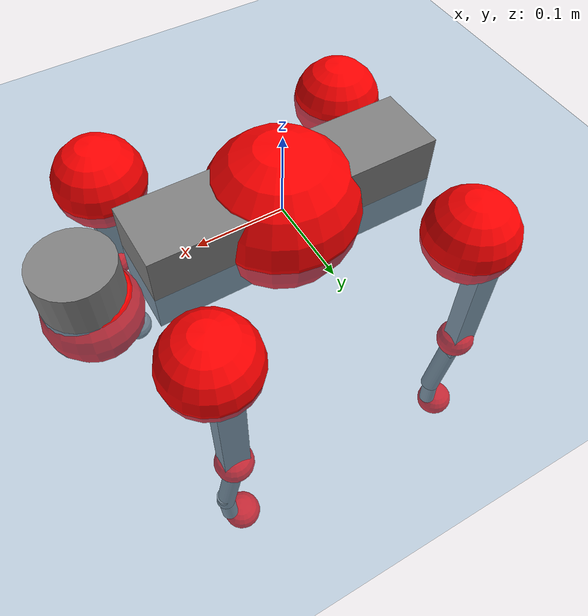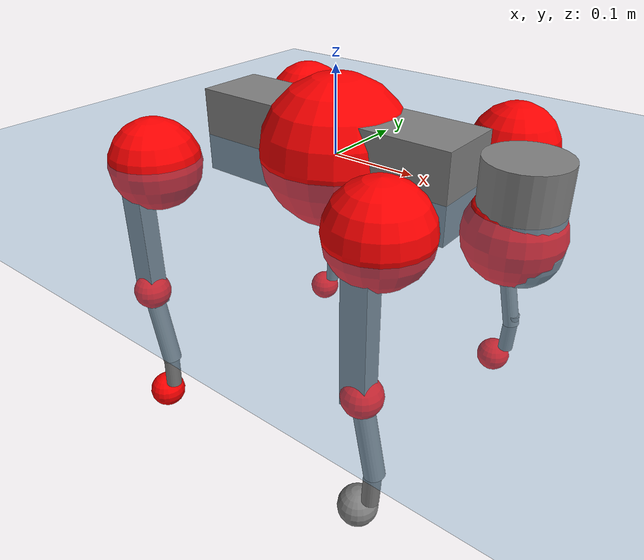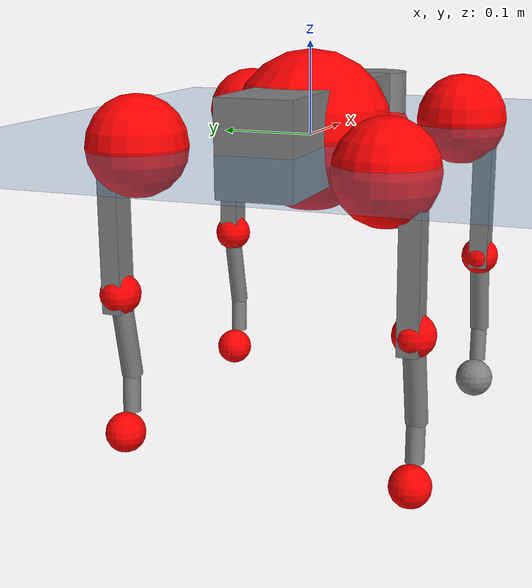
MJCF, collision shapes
<mujoco model="go2">
  <compiler angle="radian" assetdir="assets" balanceinertia="true" inertiafromgeom="false"/>

  <option timestep="0.005" density="1.2" viscosity="2e-05"/>

  <size nkey="1"/>

  <visual>
    <quality shadowsize="8192"/>
    <map shadowclip="0.5"/>
  </visual>

  <default>
    <default class="/">
      <geom contype="0" conaffinity="0" group="1" solref="-1000 -80"/>
      <site size="0.01 0.005 0.005" group="5"/>
      <general forcelimited="true" biastype="affine" gainprm="20" biasprm="0 -20 -0.5"/>
      <default class="go2">
        <joint armature="0.01" damping="0.01" frictionloss="0.2"/>
        <geom condim="1" margin="0.001"/>
        <default class="visual">
          <geom type="mesh" group="2"/>
        </default>
        <default class="collision">
          <geom group="3"/>
          <default class="foot">
            <geom size="0.022 0 0" condim="6" priority="1" friction="0.8 0.02 0.01" solimp="0.015 1 0.022"/>
          </default>
        </default>
        <default class="reward_collision_sphere">
          <geom group="5" rgba="1 0 0 1"/>
        </default>
      </default>
    </default>
  </default>

  <asset>
    <texture type="skybox" colorspace="auto" name="//unnamed_texture_0" builtin="gradient" rgb1="0.95 0.95 0.95" rgb2="0.95 0.95 0.95" width="100" height="600"/>
    <texture type="2d" colorspace="auto" name="texplane" builtin="checker" rgb1="0.345 0.575 0.748" rgb2="0.345 0.575 0.748" markrgb="1 1 1" width="512" height="512"/>
    <material name="MatPlane" class="/" texture="texplane" texuniform="true" texrepeat="2 2" specular="0.9"/>
    <material name="metal" class="/" rgba="0.9 0.95 0.95 1"/>
    <material name="black" class="/" rgba="0 0 0 1"/>
    <material name="white" class="/"/>
    <material name="gray" class="/" rgba="0.671705 0.692426 0.77427 1"/>
    <mesh name="base_0" class="/" file="base_0.obj"/>
    <mesh name="base_1" class="/" file="base_1.obj"/>
    <mesh name="base_2" class="/" file="base_2.obj"/>
    <mesh name="base_3" class="/" file="base_3.obj"/>
    <mesh name="base_4" class="/" file="base_4.obj"/>
    <mesh name="hip_0" class="/" file="hip_0.obj"/>
    <mesh name="hip_1" class="/" file="hip_1.obj"/>
    <mesh name="thigh_0" class="/" file="thigh_0.obj"/>
    <mesh name="thigh_1" class="/" file="thigh_1.obj"/>
    <mesh name="thigh_mirror_0" class="/" file="thigh_mirror_0.obj"/>
    <mesh name="thigh_mirror_1" class="/" file="thigh_mirror_1.obj"/>
    <mesh name="calf_0" class="/" file="calf_0.obj"/>
    <mesh name="calf_1" class="/" file="calf_1.obj"/>
    <mesh name="calf_mirror_0" class="/" file="calf_mirror_0.obj"/>
    <mesh name="calf_mirror_1" class="/" file="calf_mirror_1.obj"/>
    <mesh name="foot" class="/" file="foot.obj"/>
  </asset>

  <worldbody>
    <geom name="floor" class="/" size="100 100 0.125" type="plane" group="0" material="MatPlane"/>
    <light name="toplight_shadow" class="/" pos="0 0 5" dir="0.0990148 0.0990148 -0.990148" type="directional" ambient="0.04 0.04 0.04" diffuse="0.55 0.55 0.55" specular="0.12 0.12 0.12"/>
    <light name="toplight_fill" class="/" pos="0 0 5" dir="0.0990148 0.0990148 -0.990148" type="directional" castshadow="false" ambient="0.04 0.04 0.04" diffuse="0.3 0.3 0.3" specular="0.08 0.08 0.08"/>
    <body name="trunk" childclass="go2" pos="0.00206575 -0.000827999 0.0046297" quat="0.999998 0.000346129 0.00125988 0.00131167">
      <inertial pos="0.0187718 -0.00216222 -0.00409885" quat="-0.00893746 0.71999 -0.0127585 0.69381" mass="4.32554" diaginertia="0.0274387 0.150771 0.00460485"/>
      <joint name="//unnamed_joint_0" type="free" armature="0" damping="0" frictionloss="0"/>
      <geom name="//unnamed_geom_1" class="visual" material="black" mesh="base_0"/>
      <geom name="//unnamed_geom_2" class="visual" material="black" mesh="base_1"/>
      <geom name="//unnamed_geom_3" class="visual" material="black" mesh="base_2"/>
      <geom name="//unnamed_geom_4" class="visual" material="white" mesh="base_3"/>
      <geom name="//unnamed_geom_5" class="visual" material="gray" mesh="base_4"/>
      <geom name="trunk_1" class="collision" size="0.16381 0.040713 0.0496394" type="box"/>
      <geom name="trunk_2" class="collision" size="0.0435433 0.039189" pos="0.221159 0 0.0072485" type="cylinder"/>
      <geom name="trunk_3" class="collision" size="0.0409307" pos="0.227367 0 -0.043491"/>
      <geom name="//unnamed_geom_9" class="reward_collision_sphere" size="0.0870866"/>
      <geom name="//unnamed_geom_10" class="reward_collision_sphere" size="0.052252" pos="0.217279 0 -0.0326182"/>
      <site name="imu" pos="-0.00748943 0.00199658 0.0386214" size="0.00870866"/>
      <camera name="track" pos="0 -2.22351 0" quat="0.707107 0.707107 0 0" mode="trackcom"/>
      <camera name="ego_camera" pos="0.242111 0 0.0326182" quat="-0.5 -0.5 0.5 0.5"/>
      <body name="FL_hip" pos="0.150143 0.0545585 -0.000237906" quat="1 -3.80305e-05 0.00039817 -0.000563028">
        <inertial pos="-0.00100807 0.00221839 0.00470182" quat="0.507918 0.498628 0.487821 0.505391" mass="0.444852" diaginertia="0.000243803 0.000975418 9.50756e-05"/>
        <joint name="FL_hip_joint" pos="0 0 0" axis="0.999828 -0.00383834 -0.0181294" stiffness="0.00736151" range="-1.03772 1.06449" armature="0.00881112" damping="0.013417" frictionloss="0.181775"/>
        <geom name="//unnamed_geom_11" class="visual" material="metal" mesh="hip_0"/>
        <geom name="//unnamed_geom_12" class="visual" material="gray" mesh="hip_1"/>
        <geom name="//unnamed_geom_13" class="collision" size="0.0400598 0.0174173" pos="0 0.0889403 0" quat="0.707107 0.707107 0 0" type="cylinder"/>
        <geom name="//unnamed_geom_14" class="reward_collision_sphere" size="0.052252" pos="0 0.0778228 0"/>
        <body name="FL_thigh" pos="0.00189471 0.107932 -0.0034558" quat="1 -0.000204248 -3.47908e-06 -0.000544639">
          <inertial pos="-0.00390116 -0.0248928 -0.0244592" quat="0.829925 0.0859679 -0.00865331 0.551143" mass="0.811428" diaginertia="0.00178509 0.0102301 0.000186145"/>
          <joint name="FL_thigh_joint" pos="0 0 0" axis="0.00200633 0.999996 -0.00176799" stiffness="0.00687142" range="-1.58257 3.47814" armature="0.00908996" damping="0.00346696" frictionloss="0.175124"/>
          <geom name="//unnamed_geom_15" class="visual" material="metal" mesh="thigh_0"/>
          <geom name="//unnamed_geom_16" class="visual" material="gray" mesh="thigh_1"/>
          <geom name="//unnamed_geom_17" class="collision" size="0.0927473 0.0106681 0.0148047" pos="0 0 -0.0771965" quat="0.707107 0 0.707107 0" type="box"/>
          <body name="FL_calf" pos="-0.000316704 -3.84286e-05 -0.154973" quat="1 -2.22281e-05 2.88004e-05 2.27774e-05">
            <inertial pos="0.0105587 0.00331983 -0.102186" quat="0.711971 0.00454447 -0.00375816 0.702184" mass="0.157216" diaginertia="0.000435301 0.00252658 1.06874e-05"/>
            <joint name="FL_calf_joint" pos="0 0 0" axis="-0.00107369 0.999992 -0.00375948" stiffness="0.00151823" range="-2.61305 -0.82938" armature="0.00778219" damping="0" frictionloss="0.130701"/>
            <geom name="//unnamed_geom_18" class="visual" material="gray" mesh="calf_0"/>
            <geom name="//unnamed_geom_19" class="visual" material="black" mesh="calf_1"/>
            <geom name="FL_calf0" class="collision" size="0.0104504 0.052252" pos="0.00620796 0 -0.043491" quat="0.994493 0 -0.104807 0" type="cylinder"/>
            <geom name="//unnamed_geom_21" class="collision" size="0.00957953 0.0283032" pos="0.0155199 0 -0.107278" quat="0.999688 0 0.0249974 0" type="cylinder"/>
            <geom name="//unnamed_geom_22" class="visual" pos="0 0 -0.154393" quat="1 0 0 0" material="black" mesh="foot"/>
            <geom name="FL_foot" class="foot" size="0.0185901" pos="-0.00155199 0 -0.154393"/>
            <geom name="//unnamed_geom_24" class="reward_collision_sphere" size="0.0217717"/>
            <geom name="//unnamed_geom_25" class="reward_collision_sphere" size="0.0217717" pos="-0.00155199 0 -0.154393"/>
            <site name="FL_foot" class="foot" pos="-0.00155199 0 -0.154393" size="0.00870866"/>
          </body>
        </body>
      </body>
      <body name="FR_hip" pos="0.150094 -0.0541885 0.000881115" quat="0.999997 0.0019849 0.00117159 -0.000963913">
        <inertial pos="-0.00574007 -0.0015036 -0.00135279" quat="0.518732 0.500487 0.488892 0.49134" mass="0.408487" diaginertia="0.000248818 0.000984346 9.58023e-05"/>
        <joint name="FR_hip_joint" pos="0 0 0" axis="0.999995 0.000848549 0.00288047" stiffness="0.0163584" range="-0.95811 1.03099" armature="0.00968587" damping="0.00962015" frictionloss="0.172649"/>
        <geom name="//unnamed_geom_26" class="visual" pos="0 3.37055e-09 1.4457e-07" quat="4.63268e-05 1 0 0" material="metal" mesh="hip_0"/>
        <geom name="//unnamed_geom_27" class="visual" pos="0 5.46407e-09 -3.57577e-07" quat="4.63268e-05 1 0 0" material="gray" mesh="hip_1"/>
        <geom name="//unnamed_geom_28" class="collision" size="0.0400598 0.0174173" pos="0 -0.0889403 0" quat="0.707107 0.707107 0 0" type="cylinder"/>
        <geom name="//unnamed_geom_29" class="reward_collision_sphere" size="0.052252" pos="0 -0.0778228 0"/>
        <body name="FR_thigh" pos="0.00200762 -0.10628 -0.00491224" quat="1 0.000301192 0.000602537 0.000333114">
          <inertial pos="-0.00345543 0.024989 -0.0263564" quat="0.555916 -0.0300339 0.0888863 0.825927" mass="0.748244" diaginertia="0.00168642 0.0101761 0.000179536"/>
          <joint name="FR_thigh_joint" pos="0 0 0" axis="0.00251147 -0.999987 -0.00444259" range="-3.49623 1.55925" armature="0.00796891" damping="0.0360549" frictionloss="0.189021"/>
          <geom name="//unnamed_geom_30" class="visual" material="metal" mesh="thigh_mirror_0"/>
          <geom name="//unnamed_geom_31" class="visual" material="gray" mesh="thigh_mirror_1"/>
          <geom name="//unnamed_geom_32" class="collision" size="0.0927473 0.0106681 0.0148047" pos="0 0 -0.0771965" quat="0.707107 0 0.707107 0" type="box"/>
          <body name="FR_calf" pos="0.00401766 0.0012218 -0.158369" quat="0.999999 -0.000362728 0.000891578 -0.000735646">
            <inertial pos="0.00231252 0.00410805 -0.104531" quat="0.719812 -0.00927314 -0.0100426 0.694035" mass="0.161541" diaginertia="0.000431792 0.00250296 1.11072e-05"/>
            <joint name="FR_calf_joint" pos="0 0 0" axis="0.00196716 -0.99999 -0.00406001" range="0.836629 2.6922" armature="0.0091778" damping="0.0133531" frictionloss="0.164012"/>
            <geom name="//unnamed_geom_33" class="visual" material="gray" mesh="calf_mirror_0"/>
            <geom name="//unnamed_geom_34" class="visual" material="black" mesh="calf_mirror_1"/>
            <geom name="FR_calf0" class="collision" size="0.0113213 0.052252" pos="0.00775995 0 -0.043491" quat="0.995004 0 -0.0998334 0" type="cylinder"/>
            <geom name="//unnamed_geom_36" class="collision" size="0.00957953 0.0283032" pos="0.0155199 0 -0.107278" quat="0.999688 0 0.0249974 0" type="cylinder"/>
            <geom name="//unnamed_geom_37" class="visual" pos="0 0 -0.154393" quat="1 0 0 0" material="black" mesh="foot"/>
            <geom name="FR_foot" class="foot" size="0.0223318" pos="-0.00155199 0 -0.154393"/>
            <geom name="//unnamed_geom_39" class="reward_collision_sphere" size="0.0217717"/>
            <geom name="//unnamed_geom_40" class="reward_collision_sphere" size="0.0217717" pos="-0.00155199 0 -0.154393"/>
            <site name="FR_foot" class="foot" pos="-0.00155199 0 -0.154393" size="0.00870866"/>
          </body>
        </body>
      </body>
      <body name="RL_hip" pos="-0.150703 0.0520271 -0.00302433" quat="1 0.000406593 -0.000754753 0.000479353">
        <inertial pos="0.00196718 0.00536944 0.00457684" quat="0.507665 0.493067 0.503562 0.495567" mass="0.434967" diaginertia="0.000243606 0.00102962 9.72625e-05"/>
        <joint name="RL_hip_joint" pos="0 0 0" axis="-0.999892 -0.00696031 0.0129222" stiffness="0.0100847" range="-0.992046 0.976876" armature="0.00765411" damping="0.00422543" frictionloss="0.180469"/>
        <geom name="//unnamed_geom_41" class="visual" pos="-4.45562e-10 0 -8.73403e-08" quat="4.63268e-05 0 1 0" material="metal" mesh="hip_0"/>
        <geom name="//unnamed_geom_42" class="visual" pos="-7.22308e-10 0 -7.74584e-08" quat="4.63268e-05 0 1 0" material="gray" mesh="hip_1"/>
        <geom name="//unnamed_geom_43" class="collision" size="0.0400598 0.0174173" pos="0 0.0889403 0" quat="0.707107 0.707107 0 0" type="cylinder"/>
        <geom name="//unnamed_geom_44" class="reward_collision_sphere" size="0.052252" pos="0 0.0778228 0"/>
        <body name="RL_thigh" pos="0.00243347 0.108669 -0.00610965" quat="1 -0.000221569 0.000370217 0.000259896">
          <inertial pos="-0.00819682 -0.0236916 -0.0185759" quat="0.829946 0.0846675 -0.0203776 0.551004" mass="0.699098" diaginertia="0.00148065 0.00946051 0.000161929"/>
          <joint name="RL_thigh_joint" pos="0 0 0" axis="0.0290619 0.999543 0.00832219" stiffness="0.000923073" range="-0.519958 4.54963" armature="0.00868756" damping="0.0370945" frictionloss="0.18688"/>
          <geom name="//unnamed_geom_45" class="visual" material="metal" mesh="thigh_0"/>
          <geom name="//unnamed_geom_46" class="visual" material="gray" mesh="thigh_1"/>
          <geom name="//unnamed_geom_47" class="collision" size="0.0927473 0.0106681 0.0148047" pos="0 0 -0.0771965" quat="0.707107 0 0.707107 0" type="box"/>
          <body name="RL_calf" pos="0.00159269 -0.00217254 -0.151157" quat="1 -0.000569519 3.20268e-05 -0.000602207">
            <inertial pos="0.00919429 -0.00131357 -0.0975079" quat="0.712855 0.0174969 -0.00206907 0.70109" mass="0.162687" diaginertia="0.000421422 0.00248094 1.09646e-05"/>
            <joint name="RL_calf_joint" pos="0 0 0" axis="-0.0119494 0.999906 -0.00671496" range="-2.67959 -0.723756" armature="0.0071943" damping="0.0312047" frictionloss="0.179709"/>
            <geom name="//unnamed_geom_48" class="visual" material="gray" mesh="calf_0"/>
            <geom name="//unnamed_geom_49" class="visual" material="black" mesh="calf_1"/>
            <geom name="RL_calf0" class="collision" size="0.0113213 0.052252" pos="0.00775995 0 -0.043491" quat="0.995004 0 -0.0998334 0" type="cylinder"/>
            <geom name="//unnamed_geom_51" class="collision" size="0.00957953 0.0283032" pos="0.0155199 0 -0.107278" quat="0.999688 0 0.0249974 0" type="cylinder"/>
            <geom name="//unnamed_geom_52" class="visual" pos="0 0 -0.154393" quat="1 0 0 0" material="black" mesh="foot"/>
            <geom name="RL_foot" class="foot" size="0.0208406" pos="-0.00155199 0 -0.154393"/>
            <geom name="//unnamed_geom_54" class="reward_collision_sphere" size="0.0217717"/>
            <geom name="//unnamed_geom_55" class="reward_collision_sphere" size="0.0217717" pos="-0.00155199 0 -0.154393"/>
            <site name="RL_foot" class="foot" pos="-0.00155199 0 -0.154393" size="0.00870866"/>
          </body>
        </body>
      </body>
      <body name="RR_hip" pos="-0.155504 -0.0513761 -0.0136017" quat="1 -0.000312244 5.01064e-05 0.00087776">
        <inertial pos="0.00604628 -0.00215314 0.000575453" quat="0.511343 0.485781 0.493943 0.508493" mass="0.452287" diaginertia="0.000222682 0.000952572 9.14203e-05"/>
        <joint name="RR_hip_joint" pos="0 0 0" axis="-0.99961 0.0192775 -0.0202137" range="-1.07363 1.04513" armature="0.00881547" damping="0.00280806" frictionloss="0.126889"/>
        <geom name="//unnamed_geom_56" class="visual" pos="4.57186e-10 3.37055e-09 -2.3191e-07" quat="2.14617e-09 4.63268e-05 4.63268e-05 -1" material="metal" mesh="hip_0"/>
        <geom name="//unnamed_geom_57" class="visual" pos="6.93557e-10 5.46407e-09 2.80118e-07" quat="2.14617e-09 4.63268e-05 4.63268e-05 -1" material="gray" mesh="hip_1"/>
        <geom name="//unnamed_geom_58" class="collision" size="0.0400598 0.0174173" pos="0 -0.0889403 0" quat="0.707107 0.707107 0 0" type="cylinder"/>
        <geom name="//unnamed_geom_59" class="reward_collision_sphere" size="0.052252" pos="0 -0.0778228 0"/>
        <body name="RR_thigh" pos="-0.00352517 -0.105418 -0.00105254" quat="0.999999 -0.000420895 0.000551791 0.00157385">
          <inertial pos="-0.00314174 0.0236788 -0.0189455" quat="0.55236 -0.0188221 0.0841179 0.829137" mass="0.786492" diaginertia="0.00157278 0.009708 0.0001761"/>
          <joint name="RR_thigh_joint" pos="0 0 0" axis="-0.00603259 -0.999944 0.00872359" stiffness="0.00574804" range="-4.55108 0.553168" armature="0.00834681" damping="0" frictionloss="0.152594"/>
          <geom name="//unnamed_geom_60" class="visual" material="metal" mesh="thigh_mirror_0"/>
          <geom name="//unnamed_geom_61" class="visual" material="gray" mesh="thigh_mirror_1"/>
          <geom name="//unnamed_geom_62" class="collision" size="0.0927473 0.0106681 0.0148047" pos="0 0 -0.0771965" quat="0.707107 0 0.707107 0" type="box"/>
          <body name="RR_calf" pos="0.00322948 -0.00210607 -0.152509" quat="0.999996 0.000756248 -0.00267682 -0.000610195">
            <inertial pos="0.00688159 0.00109202 -0.102492" quat="0.711705 0.00772852 0.00493714 0.702418" mass="0.154833" diaginertia="0.000407942 0.00251882 1.11595e-05"/>
            <joint name="RR_calf_joint" pos="0 0 0" axis="-0.00643381 -0.999697 0.023766" stiffness="0.0174125" range="0.783149 2.67128" armature="0.00837435" damping="0.025601" frictionloss="0.152602"/>
            <geom name="//unnamed_geom_63" class="visual" material="gray" mesh="calf_mirror_0"/>
            <geom name="//unnamed_geom_64" class="visual" material="black" mesh="calf_mirror_1"/>
            <geom name="RR_calf0" class="collision" size="0.0113213 0.052252" pos="0.00775995 0 -0.043491" quat="0.995004 0 -0.0998334 0" type="cylinder"/>
            <geom name="//unnamed_geom_66" class="collision" size="0.00957953 0.0283032" pos="0.0155199 0 -0.107278" quat="0.999688 0 0.0249974 0" type="cylinder"/>
            <geom name="//unnamed_geom_67" class="visual" pos="0 0 -0.154393" quat="1 0 0 0" material="black" mesh="foot"/>
            <geom name="RR_foot" class="foot" size="0.0184604" pos="-0.00155199 0 -0.154393"/>
            <geom name="//unnamed_geom_69" class="reward_collision_sphere" size="0.0217717"/>
            <geom name="//unnamed_geom_70" class="reward_collision_sphere" size="0.0217717" pos="-0.00155199 0 -0.154393"/>
            <site name="RR_foot" class="foot" pos="-0.00155199 0 -0.154393" size="0.00870866"/>
          </body>
        </body>
      </body>
    </body>
  </worldbody>

  <contact>
    <pair class="/" geom1="floor" geom2="FL_foot" name="//unnamed_contact_0"/>
    <pair class="/" geom1="floor" geom2="FR_foot" name="//unnamed_contact_1"/>
    <pair class="/" geom1="floor" geom2="RL_foot" name="//unnamed_contact_2"/>
    <pair class="/" geom1="floor" geom2="RR_foot" name="//unnamed_contact_3"/>
  </contact>

  <actuator>
    <general name="FL_hip" class="/" joint="FL_hip_joint" forcerange="-20.5892 20.5892" gainprm="18.6268" biasprm="0 -18.6268 -0.406582"/>
    <general name="FL_thigh" class="/" joint="FL_thigh_joint" forcerange="-22.5098 22.5098" gainprm="18.6268" biasprm="0 -18.6268 -0.406582"/>
    <general name="FL_calf" class="/" joint="FL_calf_joint" forcerange="-40.4271 40.4271" gainprm="18.6268" biasprm="0 -18.6268 -0.406582"/>
    <general name="FR_hip" class="/" joint="FR_hip_joint" forcerange="-18.7225 18.7225" gainprm="18.6268" biasprm="0 -18.6268 -0.406582"/>
    <general name="FR_thigh" class="/" joint="FR_thigh_joint" forcerange="-21.189 21.189" gainprm="18.6268" biasprm="0 -18.6268 -0.406582"/>
    <general name="FR_calf" class="/" joint="FR_calf_joint" forcerange="-40.9289 40.9289" gainprm="18.6268" biasprm="0 -18.6268 -0.406582"/>
    <general name="RL_hip" class="/" joint="RL_hip_joint" forcerange="-20.8043 20.8043" gainprm="18.6268" biasprm="0 -18.6268 -0.406582"/>
    <general name="RL_thigh" class="/" joint="RL_thigh_joint" forcerange="-24.1335 24.1335" gainprm="18.6268" biasprm="0 -18.6268 -0.406582"/>
    <general name="RL_calf" class="/" joint="RL_calf_joint" forcerange="-34.8988 34.8988" gainprm="18.6268" biasprm="0 -18.6268 -0.406582"/>
    <general name="RR_hip" class="/" joint="RR_hip_joint" forcerange="-20.9122 20.9122" gainprm="18.6268" biasprm="0 -18.6268 -0.406582"/>
    <general name="RR_thigh" class="/" joint="RR_thigh_joint" forcerange="-18.9716 18.9716" gainprm="18.6268" biasprm="0 -18.6268 -0.406582"/>
    <general name="RR_calf" class="/" joint="RR_calf_joint" forcerange="-39.9661 39.9661" gainprm="18.6268" biasprm="0 -18.6268 -0.406582"/>
  </actuator>

  <sensor>
    <gyro site="imu" name="imu_angular_velocity"/>
    <velocimeter site="imu" name="imu_linear_velocity"/>
    <framelinvel objtype="site" objname="FL_foot" name="FL_foot_global_linear_velocity"/>
    <framelinvel objtype="site" objname="FR_foot" name="FR_foot_global_linear_velocity"/>
    <framelinvel objtype="site" objname="RL_foot" name="RL_foot_global_linear_velocity"/>
    <framelinvel objtype="site" objname="RR_foot" name="RR_foot_global_linear_velocity"/>
  </sensor>

  <keyframe>
    <key name="home" qpos="0 0 0.325 1 0 0 0 0.1 0.8 -1.5 -0.1 -0.8 1.5 -0.1 0.8 -1.5 0.1 -0.8 1.5"/>
  </keyframe>
</mujoco>
